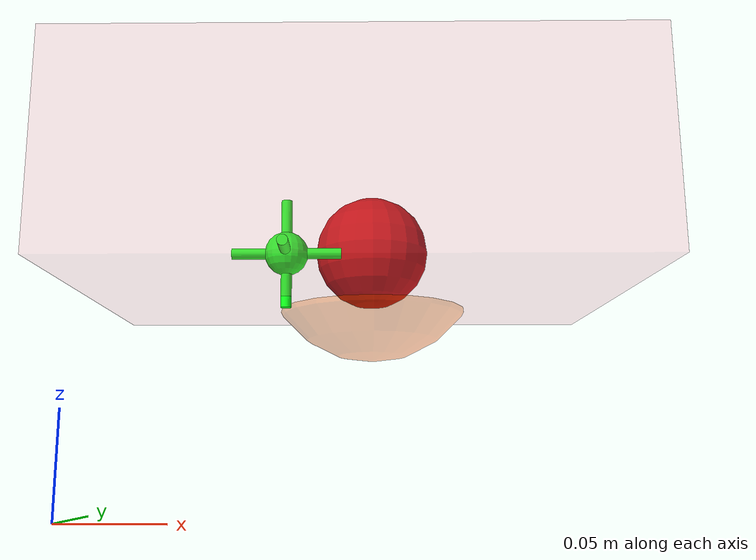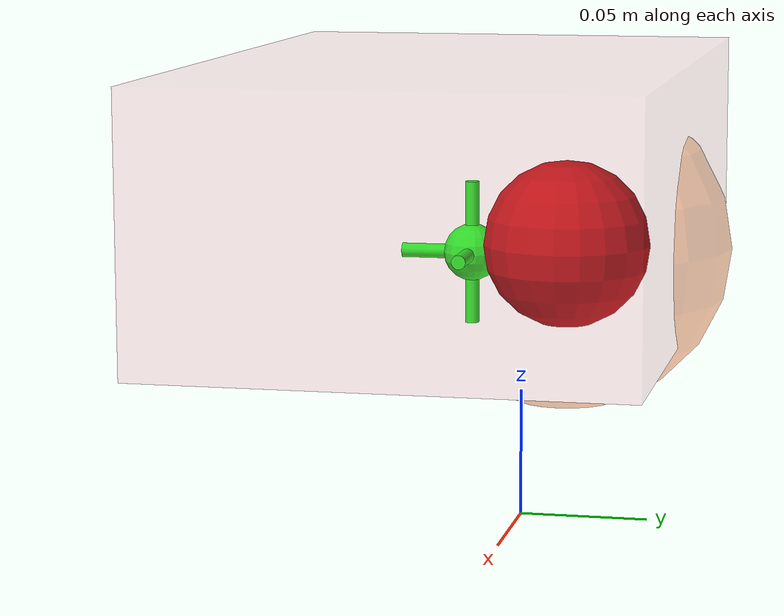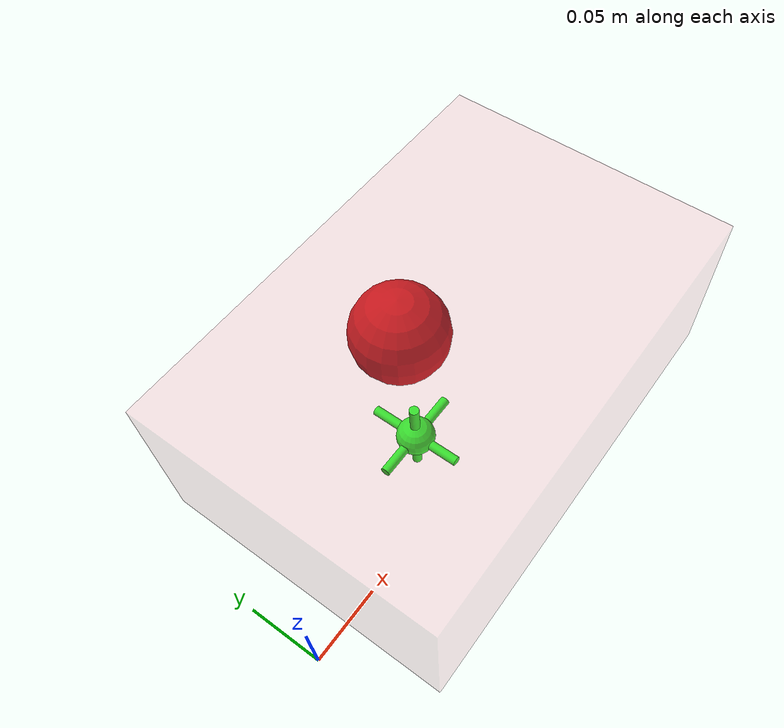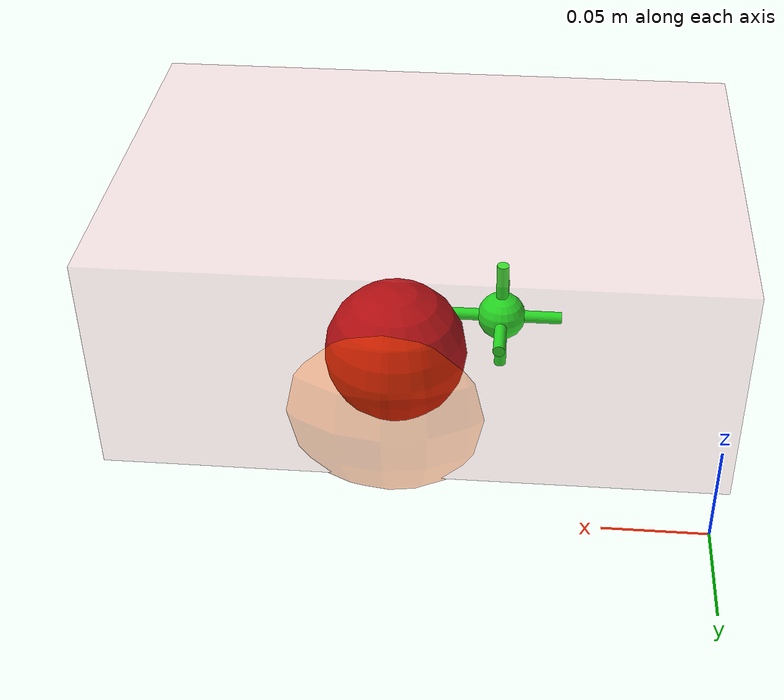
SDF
<?xml version="1.0"?>
<sdf version="1.9">
  <model name="surgical_research_scene">
    <!-- Align model origin with Gazebo robot_base spawn height. -->
    <pose>0 0 0.10 0 0 0</pose>
    <static>true</static>

    <link name="scene">

      <!-- BODY / OPERATIVE WORKSPACE -->
      <visual name="body_workspace">
        <pose>0.13 0.00 0.045 0 0 0</pose>
        <geometry>
          <box>
            <size>0.24 0.16 0.09</size>
          </box>
        </geometry>
        <material>
          <ambient>0.95 0.45 0.55 1</ambient>
          <diffuse>0.95 0.45 0.55 1</diffuse>
        </material>
        <transparency>0.88</transparency>
        <cast_shadows>false</cast_shadows>
      </visual>

      <!-- TRUE / PROTECTED ANATOMY -->
      <visual name="anatomy_true">
        <pose>0.14 0.04 0.03 0 0 0</pose>
        <geometry>
          <sphere>
            <radius>0.028</radius>
          </sphere>
        </geometry>
        <material>
          <ambient>0.75 0.02 0.02 1</ambient>
          <diffuse>0.75 0.02 0.02 1</diffuse>
        </material>
      </visual>

      <!--
        Visual anatomical context only.
        The central protected sphere above remains the research-core
        collision / safety representation.
      -->

      <visual name="anatomy_context_lobe_1">
        <pose>0.155 0.052 0.040 0 0 0</pose>
        <geometry>
          <sphere>
            <radius>0.020</radius>
          </sphere>
        </geometry>
        <material>
          <ambient>0.55 0.03 0.04 1</ambient>
          <diffuse>0.55 0.03 0.04 1</diffuse>
        </material>
        <transparency>0.18</transparency>
      </visual>

      <visual name="anatomy_context_lobe_2">
        <pose>0.127 0.050 0.025 0 0 0</pose>
        <geometry>
          <sphere>
            <radius>0.018</radius>
          </sphere>
        </geometry>
        <material>
          <ambient>0.62 0.04 0.05 1</ambient>
          <diffuse>0.62 0.04 0.05 1</diffuse>
        </material>
        <transparency>0.20</transparency>
      </visual>

      <visual name="anatomy_context_lobe_3">
        <pose>0.145 0.024 0.028 0 0 0</pose>
        <geometry>
          <sphere>
            <radius>0.017</radius>
          </sphere>
        </geometry>
        <material>
          <ambient>0.48 0.02 0.03 1</ambient>
          <diffuse>0.48 0.02 0.03 1</diffuse>
        </material>
        <transparency>0.22</transparency>
      </visual>

      <!-- SAFETY SHELL -->
      <visual name="safety_shell">
        <pose>0.14 0.04 0.03 0 0 0</pose>
        <geometry>
          <sphere>
            <radius>0.045</radius>
          </sphere>
        </geometry>
        <material>
          <ambient>1.0 0.85 0.10 1</ambient>
          <diffuse>1.0 0.85 0.10 1</diffuse>
        </material>
        <transparency>0.50</transparency>
        <cast_shadows>false</cast_shadows>
      </visual>

      <!-- UNCERTAINTY SHELL -->
      <visual name="uncertainty_shell">
        <pose>0.14 0.04 0.03 0 0 0</pose>
        <geometry>
          <sphere>
            <radius>0.055</radius>
          </sphere>
        </geometry>
        <material>
          <ambient>1.0 0.35 0.02 1</ambient>
          <diffuse>1.0 0.35 0.02 1</diffuse>
        </material>
        <transparency>0.60</transparency>
        <cast_shadows>false</cast_shadows>
      </visual>

      <!-- Surgical target crosshair -->
      <visual name="target_crosshair_x">
        <pose>0.10 0.00 0.02 0 1.57079632679 0</pose>
        <geometry>
          <cylinder>
            <radius>0.0025</radius>
            <length>0.050</length>
          </cylinder>
        </geometry>
        <material>
          <ambient>0.05 1.0 0.10 1</ambient>
          <diffuse>0.05 1.0 0.10 1</diffuse>
        </material>
      </visual>

      <visual name="target_crosshair_y">
        <pose>0.10 0.00 0.02 1.57079632679 0 0</pose>
        <geometry>
          <cylinder>
            <radius>0.0025</radius>
            <length>0.050</length>
          </cylinder>
        </geometry>
        <material>
          <ambient>0.05 1.0 0.10 1</ambient>
          <diffuse>0.05 1.0 0.10 1</diffuse>
        </material>
      </visual>

      <visual name="target_crosshair_z">
        <pose>0.10 0.00 0.02 0 0 0</pose>
        <geometry>
          <cylinder>
            <radius>0.0025</radius>
            <length>0.050</length>
          </cylinder>
        </geometry>
        <material>
          <ambient>0.05 1.0 0.10 1</ambient>
          <diffuse>0.05 1.0 0.10 1</diffuse>
        </material>
      </visual>

      <!-- TARGET -->
      <visual name="surgical_target">
        <pose>0.10 0.00 0.02 0 0 0</pose>
        <geometry>
          <sphere>
            <radius>0.010</radius>
          </sphere>
        </geometry>
        <material>
          <ambient>0.05 1.0 0.10 1</ambient>
          <diffuse>0.05 1.0 0.10 1</diffuse>
        </material>
      </visual>

    </link>
  </model>
</sdf>
